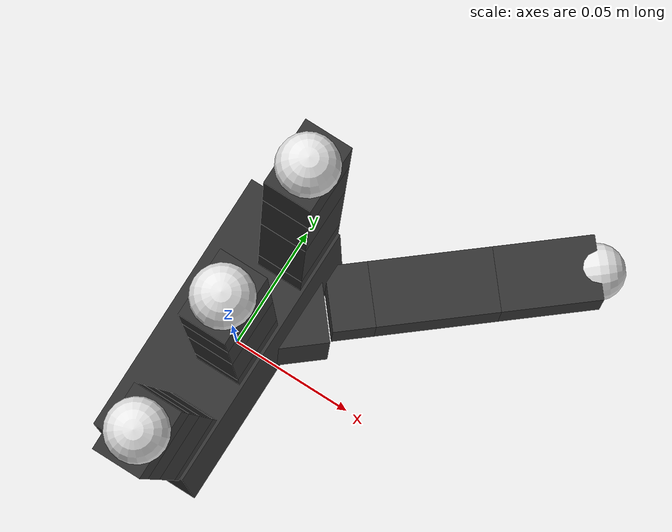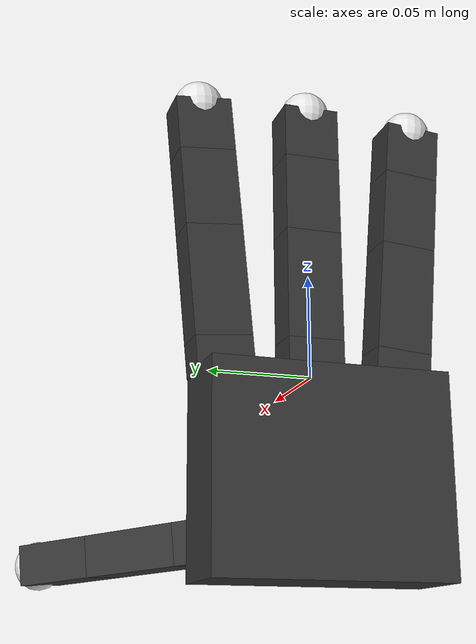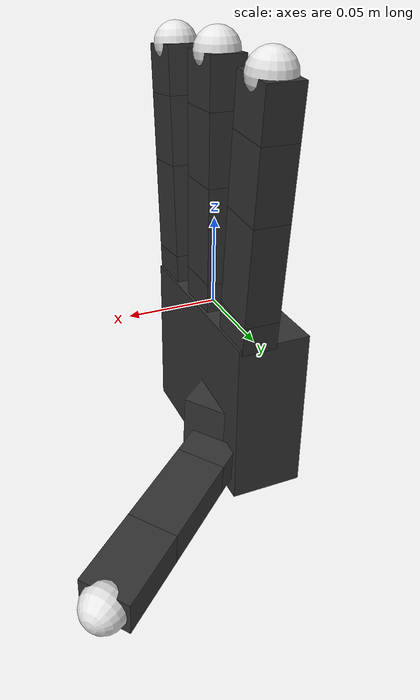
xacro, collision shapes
<?xml version="1.0"?>
<robot name="allegro" xmlns:xacro="http://ros.org/wiki/xacro">

  <xacro:arg name="hand"              default="" />
  <xacro:arg name="tip"               default="" />
  <xacro:arg name="link_prefix"       default="" />
  <xacro:arg name="joint_prefix"      default="" />

  <xacro:property name="hand"           value="$(arg hand)"/>
  <xacro:property name="link_prefix"    value="$(arg link_prefix)"/>
  <xacro:property name="joint_prefix"   value="$(arg joint_prefix)"/>
  <xacro:property name="tip"            value="$(arg tip)"/>

<link name="${joint_prefix}_world"/>
   <!-- LEFT HAND -->
  <xacro:if value="${hand == 'left'}">
      <xacro:include filename="$(find allegro_hand_des)/urdf/leftAllegroHand.urdf.xacro" />
      <xacro:left_allegro_hand  link_prefix="${link_prefix}" joint_prefix="${joint_prefix}" tip="${tip}" parent="${joint_prefix}_world">
        <origin xyz="0 0 0" rpy="0 0 0" />
         </xacro:left_allegro_hand>
  </xacro:if>

  <!-- RIGHT HAND -->
  <xacro:unless value="${hand == 'left'}">
      <xacro:include filename="$(find allegro_hand_des)/urdf/rightAllegroHand.urdf.xacro" />
      <xacro:right_allegro_hand  link_prefix="${link_prefix}" joint_prefix="${joint_prefix}" tip="${tip}" parent="${joint_prefix}_world">
          <origin xyz="0 0 0" rpy="0 0 0" />
         </xacro:right_allegro_hand>
  </xacro:unless>

</robot>

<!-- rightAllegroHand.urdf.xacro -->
<robot xmlns:xacro="http://ros.org/wiki/xacro">

  <!-- TIP's MACROS -->
  <xacro:macro name="default_tip">
    <visual>
      <geometry>
        <mesh filename="package://allegro_hand_des/meshes/link_3.0_tip.STL"/>
      </geometry>
      <material name="white">
        <color rgba=".9 .9 .9 1"/>
      </material>
    </visual>
    <collision>
      <geometry>
        <sphere radius="0.012"/>
      </geometry>
    </collision>
    <inertial>
      <mass value="0.0168" />
      <origin xyz="0 0 0" rpy="0 0 0"/>
      <inertia ixx="9.68e-07" ixy="0" ixz="0" iyy="9.68e-07" iyz="0" izz="9.68e-07" />
    </inertial>
  </xacro:macro>

  <xacro:macro name="weiss_tip">
    <visual>
      <geometry>
        <mesh filename="package://allegro_hand_des/meshes/sensing_tip.stl" scale="0.001 0.001 0.001" />
      </geometry>
      <origin rpy="1.5707963259 0 1.5707963259" xyz="-0.0095 0 0" />
      <material name="white">
        <color rgba=".9 .9 .9 1" />
      </material>
    </visual>
    <collision>
      <geometry>
        <sphere radius="0.012" />
      </geometry>
    </collision>
    <inertial>
      <mass value="0.0168" />
      <origin xyz="0 0 0" rpy="0 0 0" />
      <inertia ixx="0.0" ixy="0.0" ixz="0.0" iyy="0.0" iyz="0.0" izz="0.0" />
    </inertial>
  </xacro:macro>

  <xacro:macro name="optoforce_tip">
    <visual>
      <geometry>
        <mesh filename="package://allegro_hand_des/meshes/OptoforceTip.dae"/>
      </geometry>
      <origin rpy="0.0 -0.7853981 0.0" xyz="0.0023 0.0 -0.0122" />
    </visual>
    <collision>
      <geometry>
        <mesh filename="package://allegro_hand_des/meshes/OptoforceTip.dae"/>
      </geometry>
      <origin rpy="0.0 -0.7853981 0.0" xyz="0.0023 0.0 -0.0122" />
    </collision>
    <inertial>
      <mass value="0.0168" />
      <origin xyz="0 0 0" rpy="0 0 0" />
      <inertia ixx="0.0" ixy="0.0" ixz="0.0" iyy="0.0" iyz="0.0" izz="0.0" />
    </inertial>
  </xacro:macro>

  <!-- LINK's MACROS -->
  <xacro:macro name="link_0">
    <visual>
      <geometry>
        <mesh filename="package://allegro_hand_des/meshes/link_0.STL" />
      </geometry>
      <material name="black">
        <color rgba="0.2 0.2 0.2 1" />
      </material>
    </visual>
    <collision>
      <geometry>
        <box size="0.0196 0.0275 0.0164" />
      </geometry>
      <origin rpy="0 0 0" xyz="0 0 0.0082" />
    </collision>
    <inertial>
      <mass value="0.0119" />
      <origin xyz="0.012303 -0.012311 0" />
      <inertia ixx="1.01666658333e-06" ixy="0.0" ixz="0.0" iyy="6.47677333333e-07" iyz="0.0" izz="1.01666658333e-06" />
    </inertial>
  </xacro:macro>

  <xacro:macro name="link_1">
    <visual>
      <geometry>
        <mesh filename="package://allegro_hand_des/meshes/link_1.STL" />
      </geometry>
      <material name="black">
        <color rgba="0.2 0.2 0.2 1" />
      </material>
    </visual>
    <collision>
      <geometry>
        <box size="0.0196 0.0275 0.054" />
      </geometry>
      <origin rpy="0 0 0" xyz="0 0 0.027" />
    </collision>
    <inertial>
      <mass value="0.065" />
      <origin xyz="0.010769 -0.004809 0.026154" />
      <inertia ixx="7.95654166667e-05" ixy="1.7199e-05" ixz="8.75875e-06" iyy="2.47088833333e-05" iyz="2.413125e-05" izz="7.95654166667e-05" />
    </inertial>
  </xacro:macro>

  <xacro:macro name="link_2">
    <visual>
      <geometry>
        <mesh filename="package://allegro_hand_des/meshes/link_2.STL" />
      </geometry>
      <material name="black">
        <color rgba="0.2 0.2 0.2 1" />
      </material>
    </visual>
    <collision>
      <geometry>
        <box size="0.0196 0.0275 0.0384" />
      </geometry>
      <origin rpy="0 0 0" xyz="0 0 0.0192" />
    </collision>
    <inertial>
      <mass value="0.037009160547828809" />
      <origin xyz="0.010528 -0.010246 0.037828" />
      <inertia ixx="2.63979183333e-05" ixy="6.67968e-06" ixz="4.783625e-06" iyy="1.34948516667e-05" iyz="9.372e-06" izz="2.63979183333e-05" />
    </inertial>
  </xacro:macro>

  <xacro:macro name="link_3">
    <visual>
      <geometry>
        <mesh filename="package://allegro_hand_des/meshes/link_3.STL" />
      </geometry>
      <material name="black">
        <color rgba="0.2 0.2 0.2 1" />
      </material>
    </visual>
    <collision>
      <geometry>
        <box size="0.0196 0.0275 0.0267" />
      </geometry>
      <origin rpy="0 0 0" xyz="0 0 0.01335" />
    </collision>
    <inertial>
      <mass value="0.031366974030183042" />
      <origin xyz="0.012497 -0.019128 0.058662" />
      <inertia ixx="4.701248e-06" ixy="1.255968e-06" ixz="1.2936e-06" iyy="3.649312e-06" iyz="1.7622e-06" izz="4.701248e-06" />
    </inertial>
  </xacro:macro>

  <!-- ALLEGRO HAND MACRO -->
    <xacro:macro name="right_allegro_hand" params="link_prefix joint_prefix tip parent *origin">

    <joint name="${link_prefix}base_joint" type="fixed">
        <xacro:insert_block name="origin" />
        <parent link="${parent}"/>
        <child link="${link_prefix}base_link"/>
    </joint>

    <!-- LINKS -->
    <link name="${link_prefix}base_link">
      <visual>
        <geometry>
          <mesh filename="package://allegro_hand_des/meshes/base_link.STL"/>
        </geometry>
        <origin rpy="0 0 0" xyz="0 0 0 "/>
        <material name="black">
          <color rgba="0.2 0.2 0.2 1"/>
        </material>
      </visual>
      <collision>
        <origin rpy="0 0 0" xyz="-0.009300 0 -0.0475"/>
        <geometry>
          <box size="0.0408 0.1130 0.095"/>
        </geometry>
      </collision>
      <inertial>
        <origin xyz="0 0 0.095" rpy="0 0 0"/>
        <mass value="0.4154"/>
        <inertia ixx="1e-4" ixy="0.0" ixz="0.0" iyy="1e-4" iyz="0.0" izz="1e-4"/>
      </inertial>
    </link>

    <link name="${link_prefix}link_12_0">
      <visual>
        <geometry>
          <mesh filename="package://allegro_hand_des/meshes/link_12_right.STL"/>
        </geometry>
        <material name="black">
          <color rgba=".2 .2 .2 1"/>
        </material>
      </visual>
      <collision>
        <geometry>
          <box size="0.0358 0.034 0.0455"/>
        </geometry>
        <origin rpy="0 0 0" xyz="-0.0179 0.009 0.0145"/>
      </collision>
      <inertial>
        <mass value="0.0176" />
        <origin xyz="0 0 0" rpy="0 0 0"/>
        <inertia ixx="1.89273333333e-5" ixy="7.16716e-06" ixz="5.35568e-06" iyy="1.43008213333e-05" iyz="6.8068e-06" izz="1.89273333333e-05" />
      </inertial>
    </link>

    <link name="${link_prefix}link_13_0">
      <visual>
        <geometry>
          <mesh filename="package://allegro_hand_des/meshes/link_13.STL"/>
        </geometry>
        <material name="black">
          <color rgba=".2 .2 .2 1"/>
        </material>
      </visual>
      <collision>
        <geometry>
          <box size="0.0196 0.0275 0.0177"/>
        </geometry>
        <origin rpy="0 0 0" xyz="0 0 0.00885"/>
      </collision>
      <inertial>
        <mass value="0.0119" />
        <origin xyz="0 0 0" rpy="0 0 0"/>
        <inertia ixx="4.24250866667e-06" ixy="1.032087e-06" ixz="1.603525e-06" iyy="4.52362633333e-06" iyz="1.44808125e-06" izz="4.24250866667e-06" />
      </inertial>
    </link>

    <link name="${link_prefix}link_14_0">
      <visual>
        <geometry>
          <mesh filename="package://allegro_hand_des/meshes/link_14.STL"/>
        </geometry>
        <material name="black">
        </material>
      </visual>
      <collision>
        <geometry>
          <box size="0.0196 0.0275 0.0514"/>
        </geometry>
        <origin rpy="0 0 0" xyz="0 0 0.0257"/>
      </collision>
      <inertial>
        <mass value="0.038" />
        <origin xyz="0 0 0" rpy="0 0 0"/>
        <inertia ixx="4.30439933333e-05" ixy="9.57068e-06" ixz="5.1205e-06" iyy="1.44451933333e-05" iyz="1.342825e-05" izz="4.30439933333e-05" />
      </inertial>
    </link>

    <link name="${link_prefix}link_15_0">
      <visual>
        <geometry>
          <mesh filename="package://allegro_hand_des/meshes/link_15.STL"/>
        </geometry>
        <material name="black">
        </material>
      </visual>
      <collision>
        <geometry>
          <box size="0.0196 0.0275 0.0423"/>
        </geometry>
        <origin rpy="0 0 0" xyz="0 0 0.02115"/>
      </collision>
      <inertial>
        <mass value="0.0388" />
        <origin xyz="0 0 0" rpy="0 0 0"/>
        <inertia ixx="3.29223173333e-05" ixy="8.042076e-06" ixz="5.2283e-06" iyy="1.47493026667e-5" iyz="1.1283525e-5" izz="3.29223173333e-05" />
      </inertial>
    </link>

    <link name="${link_prefix}link_0_0">
      <xacro:link_0 />
    </link>

    <link name="${link_prefix}link_1_0">
      <xacro:link_1 />
    </link>

    <link name="${link_prefix}link_2_0">
      <xacro:link_2 />
    </link>

    <link name="${link_prefix}link_3_0">
      <xacro:link_3 />
    </link>

    <!-- Middle -->
    <link name="${link_prefix}link_4_0">
      <xacro:link_0 />
    </link>

    <link name="${link_prefix}link_5_0">
      <xacro:link_1 />
    </link>

    <link name="${link_prefix}link_6_0">
      <xacro:link_2 />
    </link>
    <link name="${link_prefix}link_7_0">
      <xacro:link_3 />
    </link>

    <!-- Ring -->
    <link name="${link_prefix}link_8_0">
      <xacro:link_0 />
    </link>

    <link name="${link_prefix}link_9_0">
      <xacro:link_1 />
    </link>

    <link name="${link_prefix}link_10_0">
      <xacro:link_2 />
    </link>

    <link name="${link_prefix}link_11_0">
      <xacro:link_3 />
    </link>

    <!-- JOINTS -->
    <!-- INDEX FINGER -->
    <joint name="${joint_prefix}joint_0_0" type="revolute">
      <axis xyz="0 0 +1" />
      <limit effort="0.7" lower="-0.596932" upper="0.588071" velocity="3" />
      <parent link="${link_prefix}base_link" />
      <child link="${link_prefix}link_0_0" />
      <origin rpy="-0.08726646255 0 0" xyz="0 0.0435 -0.001542" />
      <dynamics damping="0.021307336803783977" friction="0.06754533316058077" />
    </joint>

    <joint name="${joint_prefix}joint_1_0" type="revolute">
      <limit effort="0.7" lower="-0.28422" upper="1.79806" velocity="3" />
      <axis xyz="0 +1 0" />
      <parent link="${link_prefix}link_0_0" />
      <child link="${link_prefix}link_1_0" />
      <origin xyz="0 0 0.0164" />
      <dynamics damping="0.01767730238754802" friction="0.046834261267951538" />
    </joint>

    <joint name="${joint_prefix}joint_2_0" type="revolute">
      <axis xyz="0 +1 0" />
      <limit effort="0.7" lower="-0.277444" upper="1.77296" velocity="3" />
      <parent link="${link_prefix}link_1_0" />
      <child link="${link_prefix}link_2_0" />
      <origin xyz="0 0 0.054" />
      <dynamics damping="0.031774638864325758" friction="0.016627969777092133" />
    </joint>

    <joint name="${joint_prefix}joint_3_0" type="revolute">
      <axis xyz="0 +1 0" />
      <limit effort="0.7" lower="-0.282001" upper="1.76087" velocity="3" />
      <parent link="${link_prefix}link_2_0" />
      <child link="${link_prefix}link_3_0" />
      <origin xyz="0 0 0.0384" />
      <dynamics damping="0.038319998323206518" friction="0.021242402695969654" />
    </joint>

    <!-- MIDDLE FINGER -->
    <joint name="${joint_prefix}joint_4_0" type="revolute">
      <axis xyz="0 0 +1" />
      <limit effort="0.7" lower="-0.596932" upper="0.588071" velocity="3" />
      <parent link="${link_prefix}base_link" />
      <child link="${link_prefix}link_4_0" />
      <origin rpy="0.0 0 0" xyz="0 0 0.0007" />
      <dynamics damping="0.03919965995816594" friction="0.039832089332686435" />
    </joint>

    <joint name="${joint_prefix}joint_5_0" type="revolute">
      <limit effort="0.7" lower="-0.28422" upper="1.79806" velocity="3" />
      <axis xyz="0 +1 0" />
      <parent link="${link_prefix}link_4_0" />
      <child link="${link_prefix}link_5_0" />
      <origin xyz="0 0 0.0164" />
      <dynamics damping="0.03873626118353872" friction="0.054137945660864321" />
    </joint>

    <joint name="${joint_prefix}joint_6_0" type="revolute">
      <axis xyz="0 +1 0" />
      <limit effort="0.7" lower="-0.277444" upper="1.77296" velocity="3" />
      <parent link="${link_prefix}link_5_0" />
      <child link="${link_prefix}link_6_0" />
      <origin xyz="0 0 0.054" />
      <dynamics damping="0.038096107794554551" friction="0.016501055223839444" />
    </joint>

    <joint name="${joint_prefix}joint_7_0" type="revolute">
      <axis xyz="0 +1 0" />
      <limit effort="0.7" lower="-0.282001" upper="1.76087" velocity="3" />
      <parent link="${link_prefix}link_6_0" />
      <child link="${link_prefix}link_7_0" />
      <origin xyz="0 0 0.0384" />
      <dynamics damping="0.030909594496839752" friction="0.018861768610753726" />
    </joint>

    <!-- RING FINGER  -->
    <joint name="${joint_prefix}joint_8_0" type="revolute">
      <axis xyz="0 0 +1" />
      <limit effort="0.7" lower="-0.596932" upper="0.588071" velocity="3" />
      <parent link="${link_prefix}base_link" />
      <child link="${link_prefix}link_8_0" />
      <origin rpy="0.08726646255 0 0" xyz="0 -0.0435 -0.001542" />
      <dynamics damping="0.021307336803783977" friction="0.06754533316058077" />
    </joint>

    <joint name="${joint_prefix}joint_9_0" type="revolute">
      <limit effort="0.7" lower="-0.28422" upper="1.79806" velocity="3" />
      <axis xyz="0 +1 0" />
      <parent link="${link_prefix}link_8_0" />
      <child link="${link_prefix}link_9_0" />
      <origin xyz="0 0 0.0164" />
      <dynamics damping="0.01767730238754802" friction="0.046834261267951538" />
    </joint>

    <joint name="${joint_prefix}joint_10_0" type="revolute">
      <axis xyz="0 +1 0" />
      <limit effort="0.7" lower="-0.277444" upper="1.77296" velocity="3" />
      <parent link="${link_prefix}link_9_0" />
      <child link="${link_prefix}link_10_0" />
      <origin xyz="0 0 0.054" />
      <dynamics damping="0.031774638864325758" friction="0.016627969777092133" />
    </joint>

    <joint name="${joint_prefix}joint_11_0" type="revolute">
      <axis xyz="0 +1 0" />
      <limit effort="0.7" lower="-0.282001" upper="1.76087" velocity="3" />
      <parent link="${link_prefix}link_10_0" />
      <child link="${link_prefix}link_11_0" />
      <origin xyz="0 0 0.0384" />
      <dynamics damping="0.038319998323206518" friction="0.021242402695969654" />
    </joint>

    <!-- THUMB FINGER -->
    <joint name="${joint_prefix}joint_12_0" type="revolute">
      <axis xyz="-1 0 0"/>
      <limit effort="0.7" lower="0.218668" upper="1.53294" velocity="3"/>
      <parent link="${link_prefix}base_link"/>
      <child link="${link_prefix}link_12_0"/>
      <origin rpy="0 -1.65806278845 -1.5707963259" xyz="-0.0182 0.019333 -0.045987"/>
    </joint>

    <joint name="${joint_prefix}joint_13_0" type="revolute">
      <axis xyz="0 0 +1"/>
      <limit effort="0.7" lower="-0.396993" upper="1.20296" velocity="3"/>
      <parent link="${link_prefix}link_12_0"/>
      <child link="${link_prefix}link_13_0"/>
      <origin xyz="-0.027 0.005 0.0399"/>
    </joint>

    <joint name="${joint_prefix}joint_14_0" type="revolute">
      <axis xyz="0 +1 0"/>
      <limit effort="0.7" lower="-0.251244" upper="1.76701" velocity="3"/>
      <parent link="${link_prefix}link_13_0"/>
      <child link="${link_prefix}link_14_0"/>
      <origin xyz="0 0 0.0177"/>
    </joint>

    <joint name="${joint_prefix}joint_15_0" type="revolute">
      <axis xyz="0 +1 0"/>
      <limit effort="0.7" lower="-0.260209" upper="1.82262" velocity="3"/>
      <parent link="${link_prefix}link_14_0"/>
      <child link="${link_prefix}link_15_0"/>
      <origin xyz="0 0 0.0514"/>
    </joint>

    <!-- TIP's SET -->
    <xacro:if value="${tip == 'weiss'}">
      <link name="${link_prefix}link_3_0_tip">
        <xacro:weiss_tip/>
      </link>

      <link name="${link_prefix}link_7_0_tip">
        <xacro:weiss_tip/>
      </link>

      <link name="${link_prefix}link_11_0_tip">
        <xacro:weiss_tip/>
      </link>

      <link name="${link_prefix}link_15_0_tip">
        <xacro:weiss_tip/>
      </link>

      <joint name="${joint_prefix}joint_3_0_tip" type="fixed">
        <parent link="${link_prefix}link_3_0" />
        <child link="${link_prefix}link_3_0_tip" />
        <origin rpy="0 0 0" xyz="0.01335 0 0.0408" />
      </joint>

      <joint name="${joint_prefix}joint_7_0_tip" type="fixed">
        <parent link="${link_prefix}link_7_0" />
        <child link="${link_prefix}link_7_0_tip" />
        <origin rpy="0 0 0" xyz="0.01335 0 0.0408" />
      </joint>

      <joint name="${joint_prefix}joint_11_0_tip" type="fixed">
        <parent link="${link_prefix}link_11_0" />
        <child link="${link_prefix}link_11_0_tip" />
        <origin rpy="0 0 0" xyz="0.01335 0 0.0408" />
      </joint>

      <joint name="${joint_prefix}joint_15_0_tip" type="fixed">
        <parent link="${link_prefix}link_15_0" />
        <child link="${link_prefix}link_15_0_tip" />
        <origin rpy="0 0 0" xyz="0.01335 0 0.0564" />
      </joint>
    </xacro:if>

    <xacro:if value="${tip == 'optoforce'}">
      <link name="${link_prefix}link_3_0_tip">
        <xacro:optoforce_tip/>
      </link>

      <link name="${link_prefix}link_7_0_tip">
        <xacro:optoforce_tip/>
      </link>

      <link name="${link_prefix}link_11_0_tip">
        <xacro:optoforce_tip/>
      </link>

      <link name="${link_prefix}link_15_0_tip">
        <xacro:optoforce_tip/>
      </link>

      <joint name="${joint_prefix}joint_3_0_tip" type="fixed">
        <parent link="${link_prefix}link_3_0" />
        <child link="${link_prefix}link_3_0_tip" />
        <origin rpy="0 0.7853981 0" xyz="0.007 0.0 0.037" />
      </joint>

      <joint name="${joint_prefix}joint_7_0_tip" type="fixed">
        <parent link="${link_prefix}link_7_0" />
        <child link="${link_prefix}link_7_0_tip" />
        <origin rpy="0 0.7853981 0" xyz="0.007 0.0 0.037" />
      </joint>

      <joint name="${joint_prefix}joint_11_0_tip" type="fixed">
        <parent link="${link_prefix}link_11_0" />
        <child link="${link_prefix}link_11_0_tip" />
        <origin rpy="0 0.7853981 0" xyz="0.007 0.0 0.037" />
      </joint>

      <joint name="${joint_prefix}joint_15_0_tip" type="fixed">
        <parent link="${link_prefix}link_15_0" />
        <child link="${link_prefix}link_15_0_tip" />
        <origin rpy="0 0.7853981 0" xyz="0.007 0.0 0.0527" />
      </joint>
    </xacro:if>

    <xacro:unless value="${tip == 'weiss' or tip == 'optoforce'}">
      <link name="${link_prefix}link_3_0_tip">
        <xacro:default_tip/>
      </link>

      <link name="${link_prefix}link_7_0_tip">
        <xacro:default_tip/>
      </link>

      <link name="${link_prefix}link_11_0_tip">
        <xacro:default_tip/>
      </link>

      <link name="${link_prefix}link_15_0_tip">
        <xacro:default_tip/>
      </link>

      <joint name="${joint_prefix}joint_3_0_tip" type="fixed">
        <parent link="${link_prefix}link_3_0"/>
        <child link="${link_prefix}link_3_0_tip"/>
        <origin rpy="0 0 0" xyz="0 0 0.0267"/>
      </joint>

      <joint name="${joint_prefix}joint_7_0_tip" type="fixed">
        <parent link="${link_prefix}link_7_0"/>
        <child link="${link_prefix}link_7_0_tip"/>
        <origin rpy="0 0 0" xyz="0 0 0.0267"/>
      </joint>

      <joint name="${joint_prefix}joint_11_0_tip" type="fixed">
        <parent link="${link_prefix}link_11_0"/>
        <child link="${link_prefix}link_11_0_tip"/>
        <origin rpy="0 0 0" xyz="0 0 0.0267"/>
      </joint>

      <joint name="${joint_prefix}joint_15_0_tip" type="fixed">
        <parent link="${link_prefix}link_15_0"/>
        <child link="${link_prefix}link_15_0_tip"/>
        <origin rpy="0 0 0" xyz="0 0 0.0423"/>
      </joint>
    </xacro:unless>
  </xacro:macro>

</robot>
